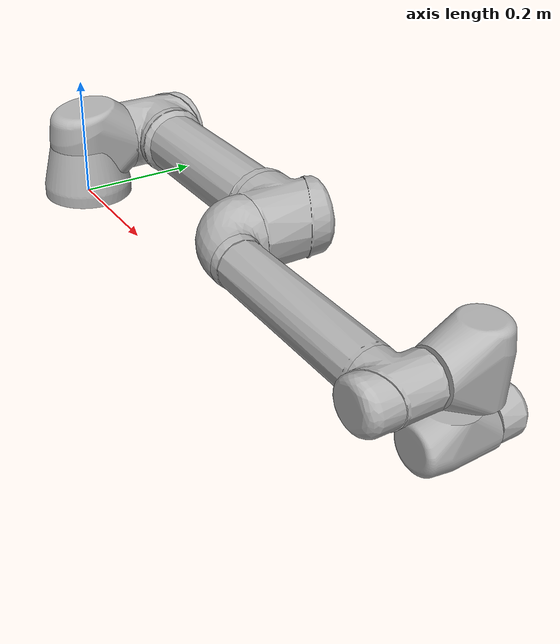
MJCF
<mujoco model="ur5">
    <compiler angle="radian" meshdir="ur5/stl/" />
    <size njmax="500" nconmax="100" />
    <default />
    <asset>
        <mesh name="base" file="base.stl" />
        <mesh name="shoulder" file="shoulder.stl" />
        <mesh name="upperarm" file="upperarm.stl" />
        <mesh name="upperarm_01" file="upperarm_01.stl" />
        <mesh name="upperarm_02" file="upperarm_02.stl" />
        <mesh name="upperarm_03" file="upperarm_03.stl" />
        <mesh name="upperarm_04" file="upperarm_04.stl" />
        <mesh name="forearm" file="forearm.stl" />
        <mesh name="forearm_01" file="forearm_01.stl" />
        <mesh name="forearm_02" file="forearm_02.stl" />
        <mesh name="wrist1" file="wrist1.stl" />
        <mesh name="wrist2" file="wrist2.stl" />
        <mesh name="wrist3" file="wrist3.stl" />
    </asset>
    <worldbody>
        <geom type="mesh" rgba="0.7 0.7 0.7 1" mesh="base" />
        <body name="shoulder_link" pos="0 0 0.089159">
            <inertial pos="0 0 0" mass="3.7" diaginertia="0.0102675 0.0102675 0.00666" />
            <joint name="shoulder_pan_joint" pos="0 0 0" axis="0 0 1" limited="true" range="-6.28319 6.28319" />
            <geom type="mesh" rgba="0.7 0.7 0.7 1" mesh="shoulder" />
            <body name="upper_arm_link" pos="0 0.13585 0" quat="0.707107 0 0.707107 0">
                <inertial pos="0 0 0.28" mass="8.393" diaginertia="0.226891 0.226891 0.0151074" />
                <joint name="shoulder_lift_joint" pos="0 0 0" axis="0 1 0" limited="true" range="-6.28319 6.28319" />
                <geom type="mesh" rgba="0.7 0.7 0.7 1" mesh="upperarm" />
                <geom type="mesh" rgba="0.7 0.7 0.7 1" mesh="upperarm_01" />
                <geom type="mesh" rgba="0.7 0.7 0.7 1" mesh="upperarm_02" />
                <geom type="mesh" rgba="0.7 0.7 0.7 1" mesh="upperarm_03" />
                <geom type="mesh" rgba="0.7 0.7 0.7 1" mesh="upperarm_04" />
                <body name="forearm_link" pos="0 -0.1197 0.425">
                    <inertial pos="0 0 0.196125" mass="2.275" diaginertia="0.0312168 0.0312168 0.004095" />
                    <joint name="elbow_joint" pos="0 0 0" axis="0 1 0" limited="true" range="-3.14159 3.14159" />
                    <geom type="mesh" rgba="0.7 0.7 0.7 1" mesh="forearm" />
                    <geom type="mesh" rgba="0.7 0.7 0.7 1" mesh="forearm_01" />
                    <geom type="mesh" rgba="0.7 0.7 0.7 1" mesh="forearm_02" />
                    <body name="wrist_1_link" pos="0 0 0.39225" quat="0.707107 0 0.707107 0">
                        <inertial pos="0 0.093 0" mass="1.219" diaginertia="0.0025599 0.0025599 0.0021942" />
                        <joint name="wrist_1_joint" pos="0 0 0" axis="0 1 0" limited="true" range="-6.28319 6.28319" />
                        <geom type="mesh" rgba="0.7 0.7 0.7 1" mesh="wrist1" />
                        <body name="wrist_2_link" pos="0 0.093 0">
                            <inertial pos="0 0 0.09465" mass="1.219" diaginertia="0.0025599 0.0025599 0.0021942" />
                            <joint name="wrist_2_joint" pos="0 0 0" axis="0 0 1" limited="true" range="-6.28319 6.28319" />
                            <geom type="mesh" rgba="0.7 0.7 0.7 1" mesh="wrist2" />
                            <body name="wrist_3_link" pos="0 0 0.09465">
                                <inertial pos="0 0.0650884 0" quat="0.707107 0 0 0.707107" mass="0.1889" diaginertia="0.000132134 8.47648e-05 8.47648e-05" />
                                <joint name="wrist_3_joint" pos="0 0 0" axis="0 1 0" limited="true" range="-6.28319 6.28319" />
                                <geom type="mesh" rgba="0.7 0.7 0.7 1" mesh="wrist3" />
                                <geom size="0.005 0.005 0.005" pos="0 0.0723 0" quat="0.707107 0 0 0.707107" type="box" />
                            </body>
                        </body>
                    </body>
                </body>
            </body>
        </body>
    </worldbody>
</mujoco>
